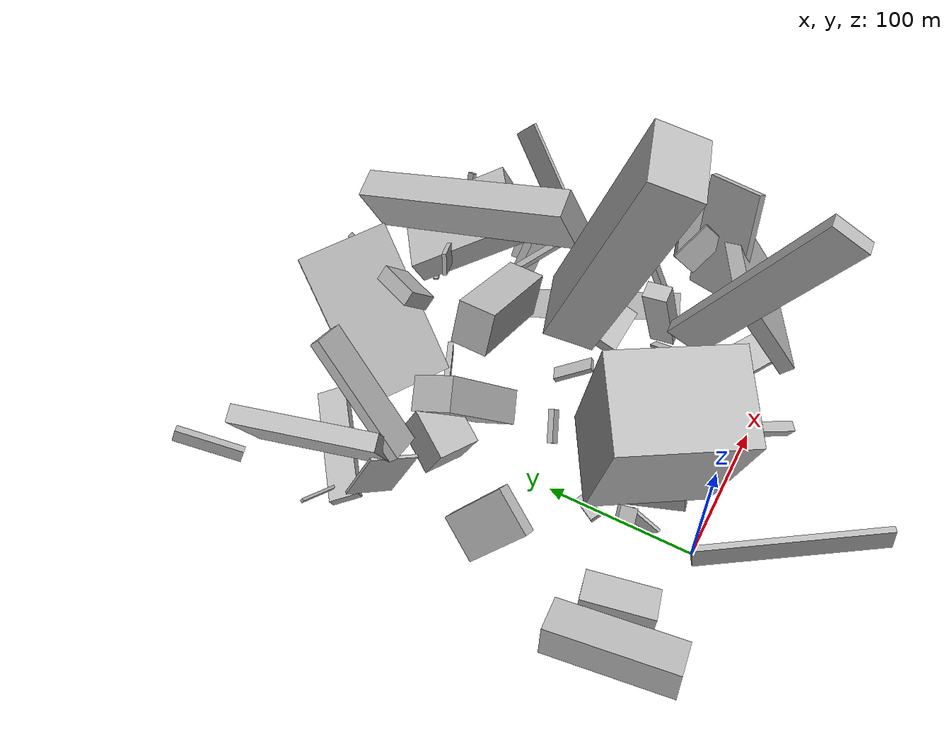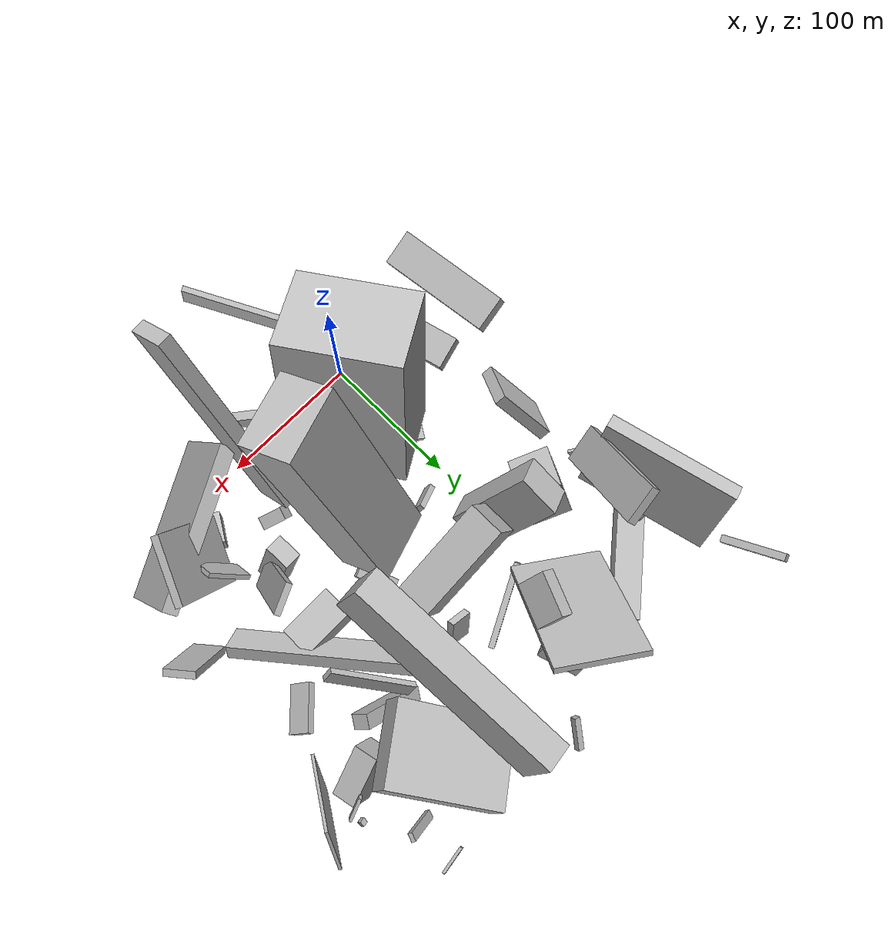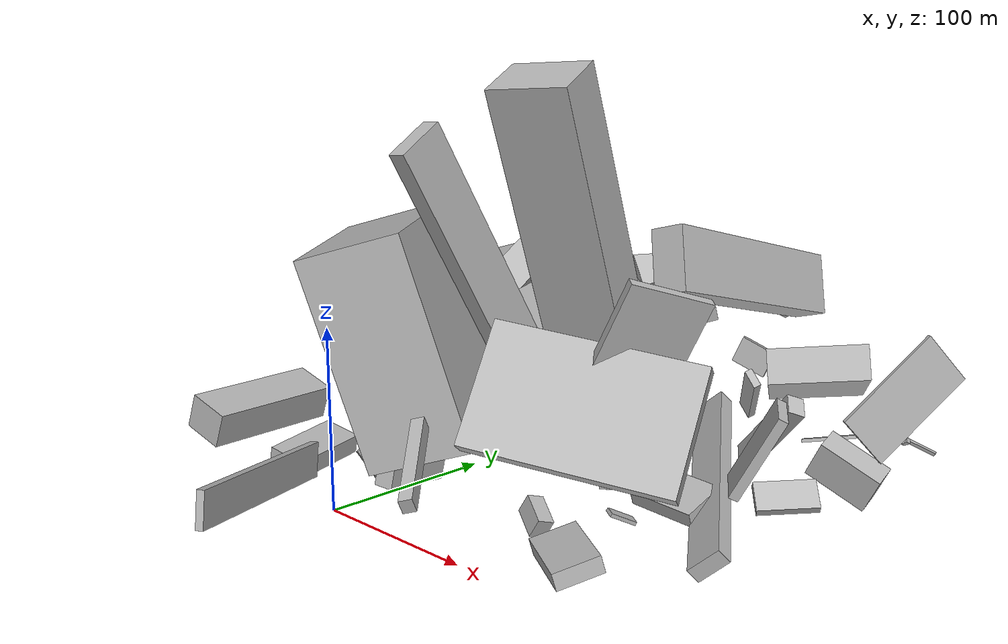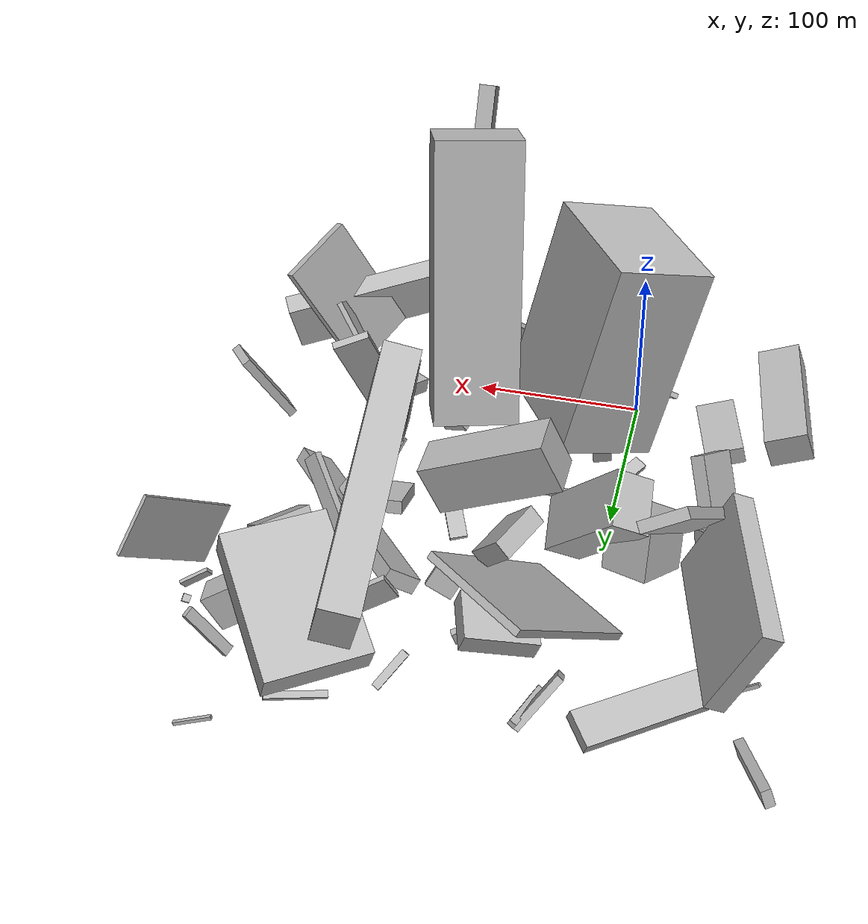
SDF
<sdf version="1.6">
 <world name="default">
  <model name="building_1">
   <static>0</static>
   <pose>159.1138077239486 13.436275596271237 57.94684103337113 0.5857820949794299 -0.13775131169422156 -2.6791968526474874</pose>
   <link name="link">
    <gravity>0</gravity>
    <pose>0 0 31.5 0 0 0</pose>
    <collision name="collision"><geometry><box><size>105 10 63</size></box></geometry></collision>
    <visual name="visual">
     <cast_shadows>0</cast_shadows>
     <geometry><box><size>105 10 63</size></box></geometry>
     <material>
      <script>
       <uri>model://HANNAS_wall/materials/scripts</uri>
       <uri>model://HANNAS_wall/materials/textures</uri>
       <name>vrc/HANNAS_wall</name>
      </script>
     </material>
    </visual>
   </link>
  </model>
  <model name="building_8">
   <static>0</static>
   <pose>0.8456267458583824 205.04773165463388 46.59745783080915 0.8320553202530045 0.07223264959962855 2.5471351509358193</pose>
   <link name="link">
    <gravity>0</gravity>
    <pose>0 0 51.0 0 0 0</pose>
    <collision name="collision"><geometry><box><size>59 4 102</size></box></geometry></collision>
    <visual name="visual">
     <cast_shadows>0</cast_shadows>
     <geometry><box><size>59 4 102</size></box></geometry>
     <material>
      <script>
       <uri>model://HANNAS_wall/materials/scripts</uri>
       <uri>model://HANNAS_wall/materials/textures</uri>
       <name>vrc/HANNAS_wall</name>
      </script>
     </material>
    </visual>
   </link>
  </model>
  <model name="building_10">
   <static>0</static>
   <pose>147.91755249715447 54.46704667792444 71.37544862686053 0.31906890251553727 -0.3345849477050274 2.5776239497814135</pose>
   <link name="link">
    <gravity>0</gravity>
    <pose>0 0 37.0 0 0 0</pose>
    <collision name="collision"><geometry><box><size>5 43 74</size></box></geometry></collision>
    <visual name="visual">
     <cast_shadows>0</cast_shadows>
     <geometry><box><size>5 43 74</size></box></geometry>
     <material>
      <script>
       <uri>model://HANNAS_wall/materials/scripts</uri>
       <uri>model://HANNAS_wall/materials/textures</uri>
       <name>vrc/HANNAS_wall</name>
      </script>
     </material>
    </visual>
   </link>
  </model>
  <model name="building_11">
   <static>0</static>
   <pose>-55.88397061824636 111.2717917238354 40.22627905249582 0.7936065777207628 -0.8385531652404434 -1.1349127744845997</pose>
   <link name="link">
    <gravity>0</gravity>
    <pose>0 0 4.0 0 0 0</pose>
    <collision name="collision"><geometry><box><size>51 31 8</size></box></geometry></collision>
    <visual name="visual">
     <cast_shadows>0</cast_shadows>
     <geometry><box><size>51 31 8</size></box></geometry>
     <material>
      <script>
       <uri>model://HANNAS_wall/materials/scripts</uri>
       <uri>model://HANNAS_wall/materials/textures</uri>
       <name>vrc/HANNAS_wall</name>
      </script>
     </material>
    </visual>
   </link>
  </model>
  <model name="building_14">
   <static>0</static>
   <pose>95.51483392943211 201.38969245307635 34.242334045749026 1.92727393208681 0.8194639101243145 0.9276658580605425</pose>
   <link name="link">
    <gravity>0</gravity>
    <pose>0 0 75.0 0 0 0</pose>
    <collision name="collision"><geometry><box><size>9 20 150</size></box></geometry></collision>
    <visual name="visual">
     <cast_shadows>0</cast_shadows>
     <geometry><box><size>9 20 150</size></box></geometry>
     <material>
      <script>
       <uri>model://HANNAS_wall/materials/scripts</uri>
       <uri>model://HANNAS_wall/materials/textures</uri>
       <name>vrc/HANNAS_wall</name>
      </script>
     </material>
    </visual>
   </link>
  </model>
  <model name="building_15">
   <static>0</static>
   <pose>74.59313998689322 123.98580256936594 88.67878758578753 -0.06287728880933119 -0.34629753177759953 1.9146610443210994</pose>
   <link name="link">
    <gravity>0</gravity>
    <pose>0 0 75.0 0 0 0</pose>
    <collision name="collision"><geometry><box><size>33 45 150</size></box></geometry></collision>
    <visual name="visual">
     <cast_shadows>0</cast_shadows>
     <geometry><box><size>33 45 150</size></box></geometry>
     <material>
      <script>
       <uri>model://HANNAS_wall/materials/scripts</uri>
       <uri>model://HANNAS_wall/materials/textures</uri>
       <name>vrc/HANNAS_wall</name>
      </script>
     </material>
    </visual>
   </link>
  </model>
  <model name="building_21">
   <static>0</static>
   <pose>-62.54899721045746 220.35935203479772 54.889465916284614 0.017928087220613988 0.401777272994292 -2.8875137946002227</pose>
   <link name="link">
    <gravity>0</gravity>
    <pose>0 0 27.5 0 0 0</pose>
    <collision name="collision"><geometry><box><size>11 89 55</size></box></geometry></collision>
    <visual name="visual">
     <cast_shadows>0</cast_shadows>
     <geometry><box><size>11 89 55</size></box></geometry>
     <material>
      <script>
       <uri>model://HANNAS_wall/materials/scripts</uri>
       <uri>model://HANNAS_wall/materials/textures</uri>
       <name>vrc/HANNAS_wall</name>
      </script>
     </material>
    </visual>
   </link>
  </model>
  <model name="building_23">
   <static>0</static>
   <pose>-33.32842596712758 151.8489042872372 49.78965106882918 1.1751729924314984 -0.20513603152566345 2.6920419037199546</pose>
   <link name="link">
    <gravity>0</gravity>
    <pose>0 0 16.0 0 0 0</pose>
    <collision name="collision"><geometry><box><size>27 31 32</size></box></geometry></collision>
    <visual name="visual">
     <cast_shadows>0</cast_shadows>
     <geometry><box><size>27 31 32</size></box></geometry>
     <material>
      <script>
       <uri>model://HANNAS_wall/materials/scripts</uri>
       <uri>model://HANNAS_wall/materials/textures</uri>
       <name>vrc/HANNAS_wall</name>
      </script>
     </material>
    </visual>
   </link>
  </model>
  <model name="building_38">
   <static>0</static>
   <pose>110.1063743259683 210.01617964693372 95.46091207373397 0.27089373075676376 -0.25752482190596915 -1.50701820132834</pose>
   <link name="link">
    <gravity>0</gravity>
    <pose>0 0 18.0 0 0 0</pose>
    <collision name="collision"><geometry><box><size>150 20 36</size></box></geometry></collision>
    <visual name="visual">
     <cast_shadows>0</cast_shadows>
     <geometry><box><size>150 20 36</size></box></geometry>
     <material>
      <script>
       <uri>model://HANNAS_wall/materials/scripts</uri>
       <uri>model://HANNAS_wall/materials/textures</uri>
       <name>vrc/HANNAS_wall</name>
      </script>
     </material>
    </visual>
   </link>
  </model>
  <model name="building_39">
   <static>0</static>
   <pose>-14.246740028703497 -1.7595349841744223 25.642129952614056 1.4309719046076137 0.02585714252078992 0.5200638740085819</pose>
   <link name="link">
    <gravity>0</gravity>
    <pose>0 0 59.5 0 0 0</pose>
    <collision name="collision"><geometry><box><size>4 19 119</size></box></geometry></collision>
    <visual name="visual">
     <cast_shadows>0</cast_shadows>
     <geometry><box><size>4 19 119</size></box></geometry>
     <material>
      <script>
       <uri>model://HANNAS_wall/materials/scripts</uri>
       <uri>model://HANNAS_wall/materials/textures</uri>
       <name>vrc/HANNAS_wall</name>
      </script>
     </material>
    </visual>
   </link>
  </model>
  <model name="building_40">
   <static>0</static>
   <pose>-5.2343420615912635 72.44874677730962 94.18746307907183 -1.7490813672014913 -1.277176754975238 -2.38886350394899</pose>
   <link name="link">
    <gravity>0</gravity>
    <pose>0 0 39.5 0 0 0</pose>
    <collision name="collision"><geometry><box><size>118 58 79</size></box></geometry></collision>
    <visual name="visual">
     <cast_shadows>0</cast_shadows>
     <geometry><box><size>118 58 79</size></box></geometry>
     <material>
      <script>
       <uri>model://HANNAS_wall/materials/scripts</uri>
       <uri>model://HANNAS_wall/materials/textures</uri>
       <name>vrc/HANNAS_wall</name>
      </script>
     </material>
    </visual>
   </link>
  </model>
  <model name="building_41">
   <static>0</static>
   <pose>155.3689195926294 157.6418422677176 72.3585104152755 2.2055301684032913 0.4228930295385421 -2.1631885921597376</pose>
   <link name="link">
    <gravity>0</gravity>
    <pose>0 0 30.5 0 0 0</pose>
    <collision name="collision"><geometry><box><size>4 10 61</size></box></geometry></collision>
    <visual name="visual">
     <cast_shadows>0</cast_shadows>
     <geometry><box><size>4 10 61</size></box></geometry>
     <material>
      <script>
       <uri>model://HANNAS_wall/materials/scripts</uri>
       <uri>model://HANNAS_wall/materials/textures</uri>
       <name>vrc/HANNAS_wall</name>
      </script>
     </material>
    </visual>
   </link>
  </model>
  <model name="building_43">
   <static>0</static>
   <pose>99.24863558841241 55.71885716492735 76.25988078761047 -0.07716494437695395 -0.5117853786590906 1.7074327518989423</pose>
   <link name="link">
    <gravity>0</gravity>
    <pose>0 0 75.0 0 0 0</pose>
    <collision name="collision"><geometry><box><size>26 9 150</size></box></geometry></collision>
    <visual name="visual">
     <cast_shadows>0</cast_shadows>
     <geometry><box><size>26 9 150</size></box></geometry>
     <material>
      <script>
       <uri>model://HANNAS_wall/materials/scripts</uri>
       <uri>model://HANNAS_wall/materials/textures</uri>
       <name>vrc/HANNAS_wall</name>
      </script>
     </material>
    </visual>
   </link>
  </model>
  <model name="building_48">
   <static>0</static>
   <pose>39.130318747306944 201.6770665501179 18.776030131068193 1.6027151602831762 0.2749880032691475 0.4785035606673193</pose>
   <link name="link">
    <gravity>0</gravity>
    <pose>0 0 2.0 0 0 0</pose>
    <collision name="collision"><geometry><box><size>59 8 4</size></box></geometry></collision>
    <visual name="visual">
     <cast_shadows>0</cast_shadows>
     <geometry><box><size>59 8 4</size></box></geometry>
     <material>
      <script>
       <uri>model://HANNAS_wall/materials/scripts</uri>
       <uri>model://HANNAS_wall/materials/textures</uri>
       <name>vrc/HANNAS_wall</name>
      </script>
     </material>
    </visual>
   </link>
  </model>
  <model name="building_60">
   <static>0</static>
   <pose>136.50997856290607 29.76496117374439 16.045714841082177 -1.5903950927033088 -1.3020181948945997 -2.069221431368545</pose>
   <link name="link">
    <gravity>0</gravity>
    <pose>0 0 20.5 0 0 0</pose>
    <collision name="collision"><geometry><box><size>9 24 41</size></box></geometry></collision>
    <visual name="visual">
     <cast_shadows>0</cast_shadows>
     <geometry><box><size>9 24 41</size></box></geometry>
     <material>
      <script>
       <uri>model://HANNAS_wall/materials/scripts</uri>
       <uri>model://HANNAS_wall/materials/textures</uri>
       <name>vrc/HANNAS_wall</name>
      </script>
     </material>
    </visual>
   </link>
  </model>
  <model name="building_64">
   <static>0</static>
   <pose>74.02458167737079 287.9291570671856 73.24218402000206 0.49057019261513607 -0.4791262449545158 -2.184470831997738</pose>
   <link name="link">
    <gravity>0</gravity>
    <pose>0 0 2.0 0 0 0</pose>
    <collision name="collision"><geometry><box><size>21 4 4</size></box></geometry></collision>
    <visual name="visual">
     <cast_shadows>0</cast_shadows>
     <geometry><box><size>21 4 4</size></box></geometry>
     <material>
      <script>
       <uri>model://HANNAS_wall/materials/scripts</uri>
       <uri>model://HANNAS_wall/materials/textures</uri>
       <name>vrc/HANNAS_wall</name>
      </script>
     </material>
    </visual>
   </link>
  </model>
  <model name="building_65">
   <static>0</static>
   <pose>149.81216365987567 101.02048200170125 82.34213266399598 1.2843769817831272 -0.38742513664859834 -1.0593017840155667</pose>
   <link name="link">
    <gravity>0</gravity>
    <pose>0 0 10.0 0 0 0</pose>
    <collision name="collision"><geometry><box><size>4 81 20</size></box></geometry></collision>
    <visual name="visual">
     <cast_shadows>0</cast_shadows>
     <geometry><box><size>4 81 20</size></box></geometry>
     <material>
      <script>
       <uri>model://HANNAS_wall/materials/scripts</uri>
       <uri>model://HANNAS_wall/materials/textures</uri>
       <name>vrc/HANNAS_wall</name>
      </script>
     </material>
    </visual>
   </link>
  </model>
  <model name="building_72">
   <static>0</static>
   <pose>29.969000691003973 111.83026962222709 26.231872469217045 -0.5926963470325117 0.406363705698929 1.7265698815919397</pose>
   <link name="link">
    <gravity>0</gravity>
    <pose>0 0 3.5 0 0 0</pose>
    <collision name="collision"><geometry><box><size>4 22 7</size></box></geometry></collision>
    <visual name="visual">
     <cast_shadows>0</cast_shadows>
     <geometry><box><size>4 22 7</size></box></geometry>
     <material>
      <script>
       <uri>model://HANNAS_wall/materials/scripts</uri>
       <uri>model://HANNAS_wall/materials/textures</uri>
       <name>vrc/HANNAS_wall</name>
      </script>
     </material>
    </visual>
   </link>
  </model>
  <model name="building_76">
   <static>0</static>
   <pose>17.440740557578984 36.93739647670927 10.958492158398693 0.1082173412974126 0.1743827232577553 1.82238035404539</pose>
   <link name="link">
    <gravity>0</gravity>
    <pose>0 0 6.5 0 0 0</pose>
    <collision name="collision"><geometry><box><size>46 11 13</size></box></geometry></collision>
    <visual name="visual">
     <cast_shadows>0</cast_shadows>
     <geometry><box><size>46 11 13</size></box></geometry>
     <material>
      <script>
       <uri>model://HANNAS_wall/materials/scripts</uri>
       <uri>model://HANNAS_wall/materials/textures</uri>
       <name>vrc/HANNAS_wall</name>
      </script>
     </material>
    </visual>
   </link>
  </model>
  <model name="building_80">
   <static>0</static>
   <pose>200.64416712637595 100.40076911220166 63.73101889220348 1.761236645236138 0.4646973054681501 0.7625744734293064</pose>
   <link name="link">
    <gravity>0</gravity>
    <pose>0 0 10.5 0 0 0</pose>
    <collision name="collision"><geometry><box><size>5 47 21</size></box></geometry></collision>
    <visual name="visual">
     <cast_shadows>0</cast_shadows>
     <geometry><box><size>5 47 21</size></box></geometry>
     <material>
      <script>
       <uri>model://HANNAS_wall/materials/scripts</uri>
       <uri>model://HANNAS_wall/materials/textures</uri>
       <name>vrc/HANNAS_wall</name>
      </script>
     </material>
    </visual>
   </link>
  </model>
  <model name="building_82">
   <static>0</static>
   <pose>86.28270330286712 126.73156508701044 13.718459320199479 -2.6543029003325374 -0.05266108303555212 -2.7326035200266166</pose>
   <link name="link">
    <gravity>0</gravity>
    <pose>0 0 2.0 0 0 0</pose>
    <collision name="collision"><geometry><box><size>10 29 4</size></box></geometry></collision>
    <visual name="visual">
     <cast_shadows>0</cast_shadows>
     <geometry><box><size>10 29 4</size></box></geometry>
     <material>
      <script>
       <uri>model://HANNAS_wall/materials/scripts</uri>
       <uri>model://HANNAS_wall/materials/textures</uri>
       <name>vrc/HANNAS_wall</name>
      </script>
     </material>
    </visual>
   </link>
  </model>
  <model name="building_88">
   <static>0</static>
   <pose>74.02712879319677 187.40719494219817 29.891194210743105 -1.1485026055219865 -0.47758147321553773 -0.07082558876759507</pose>
   <link name="link">
    <gravity>0</gravity>
    <pose>0 0 2.5 0 0 0</pose>
    <collision name="collision"><geometry><box><size>16 19 5</size></box></geometry></collision>
    <visual name="visual">
     <cast_shadows>0</cast_shadows>
     <geometry><box><size>16 19 5</size></box></geometry>
     <material>
      <script>
       <uri>model://HANNAS_wall/materials/scripts</uri>
       <uri>model://HANNAS_wall/materials/textures</uri>
       <name>vrc/HANNAS_wall</name>
      </script>
     </material>
    </visual>
   </link>
  </model>
  <model name="building_89">
   <static>0</static>
   <pose>9.570391762079375 254.01672432886105 23.143883656018847 -0.91312683104834 0.7033856679486078 -1.4482992180395065</pose>
   <link name="link">
    <gravity>0</gravity>
    <pose>0 0 2.0 0 0 0</pose>
    <collision name="collision"><geometry><box><size>14 34 4</size></box></geometry></collision>
    <visual name="visual">
     <cast_shadows>0</cast_shadows>
     <geometry><box><size>14 34 4</size></box></geometry>
     <material>
      <script>
       <uri>model://HANNAS_wall/materials/scripts</uri>
       <uri>model://HANNAS_wall/materials/textures</uri>
       <name>vrc/HANNAS_wall</name>
      </script>
     </material>
    </visual>
   </link>
  </model>
  <model name="building_90">
   <static>0</static>
   <pose>187.5624049003038 209.93698805751777 23.630956466309332 -2.6570088056046757 -0.1939682336367444 1.7779496391501863</pose>
   <link name="link">
    <gravity>0</gravity>
    <pose>0 0 11.0 0 0 0</pose>
    <collision name="collision"><geometry><box><size>17 37 22</size></box></geometry></collision>
    <visual name="visual">
     <cast_shadows>0</cast_shadows>
     <geometry><box><size>17 37 22</size></box></geometry>
     <material>
      <script>
       <uri>model://HANNAS_wall/materials/scripts</uri>
       <uri>model://HANNAS_wall/materials/textures</uri>
       <name>vrc/HANNAS_wall</name>
      </script>
     </material>
    </visual>
   </link>
  </model>
  <model name="building_91">
   <static>0</static>
   <pose>50.566517454362064 252.38720608520882 73.54835936217813 -1.8666565423284285 0.12933194364304706 1.8797797809965229</pose>
   <link name="link">
    <gravity>0</gravity>
    <pose>0 0 19.0 0 0 0</pose>
    <collision name="collision"><geometry><box><size>27 11 38</size></box></geometry></collision>
    <visual name="visual">
     <cast_shadows>0</cast_shadows>
     <geometry><box><size>27 11 38</size></box></geometry>
     <material>
      <script>
       <uri>model://HANNAS_wall/materials/scripts</uri>
       <uri>model://HANNAS_wall/materials/textures</uri>
       <name>vrc/HANNAS_wall</name>
      </script>
     </material>
    </visual>
   </link>
  </model>
  <model name="building_102">
   <static>0</static>
   <pose>30.552893271594662 222.11640870121983 98.47246167606409 -0.029722519993837647 0.8167771210123939 -0.41773719838884854</pose>
   <link name="link">
    <gravity>0</gravity>
    <pose>0 0 5.0 0 0 0</pose>
    <collision name="collision"><geometry><box><size>21 29 10</size></box></geometry></collision>
    <visual name="visual">
     <cast_shadows>0</cast_shadows>
     <geometry><box><size>21 29 10</size></box></geometry>
     <material>
      <script>
       <uri>model://HANNAS_wall/materials/scripts</uri>
       <uri>model://HANNAS_wall/materials/textures</uri>
       <name>vrc/HANNAS_wall</name>
      </script>
     </material>
    </visual>
   </link>
  </model>
  <model name="building_105">
   <static>0</static>
   <pose>-70.29775434417392 190.49608712535516 33.95714555498863 0.4291719809812265 -0.1633192740779605 0.7772153757596403</pose>
   <link name="link">
    <gravity>0</gravity>
    <pose>0 0 23.0 0 0 0</pose>
    <collision name="collision"><geometry><box><size>2 30 46</size></box></geometry></collision>
    <visual name="visual">
     <cast_shadows>0</cast_shadows>
     <geometry><box><size>2 30 46</size></box></geometry>
     <material>
      <script>
       <uri>model://HANNAS_wall/materials/scripts</uri>
       <uri>model://HANNAS_wall/materials/textures</uri>
       <name>vrc/HANNAS_wall</name>
      </script>
     </material>
    </visual>
   </link>
  </model>
  <model name="building_107">
   <static>0</static>
   <pose>-88.01784358164706 271.43093020198984 40.82976889064575 -0.5514652944964006 -1.0918199617324358 -0.6087742171336732</pose>
   <link name="link">
    <gravity>0</gravity>
    <pose>0 0 21.5 0 0 0</pose>
    <collision name="collision"><geometry><box><size>9 5 43</size></box></geometry></collision>
    <visual name="visual">
     <cast_shadows>0</cast_shadows>
     <geometry><box><size>9 5 43</size></box></geometry>
     <material>
      <script>
       <uri>model://HANNAS_wall/materials/scripts</uri>
       <uri>model://HANNAS_wall/materials/textures</uri>
       <name>vrc/HANNAS_wall</name>
      </script>
     </material>
    </visual>
   </link>
  </model>
  <model name="building_109">
   <static>0</static>
   <pose>156.05423759919748 78.95990275075366 100.7296975231603 -2.268147272940436 -0.45009740239809 -2.7101574991860913</pose>
   <link name="link">
    <gravity>0</gravity>
    <pose>0 0 8.5 0 0 0</pose>
    <collision name="collision"><geometry><box><size>3 29 17</size></box></geometry></collision>
    <visual name="visual">
     <cast_shadows>0</cast_shadows>
     <geometry><box><size>3 29 17</size></box></geometry>
     <material>
      <script>
       <uri>model://HANNAS_wall/materials/scripts</uri>
       <uri>model://HANNAS_wall/materials/textures</uri>
       <name>vrc/HANNAS_wall</name>
      </script>
     </material>
    </visual>
   </link>
  </model>
  <model name="building_113">
   <static>0</static>
   <pose>119.80440102899865 258.4777780297936 4.724043323899969 -1.3657767329982113 -0.19600121059337325 -1.2033751117268194</pose>
   <link name="link">
    <gravity>0</gravity>
    <pose>0 0 16.5 0 0 0</pose>
    <collision name="collision"><geometry><box><size>4 2 33</size></box></geometry></collision>
    <visual name="visual">
     <cast_shadows>0</cast_shadows>
     <geometry><box><size>4 2 33</size></box></geometry>
     <material>
      <script>
       <uri>model://HANNAS_wall/materials/scripts</uri>
       <uri>model://HANNAS_wall/materials/textures</uri>
       <name>vrc/HANNAS_wall</name>
      </script>
     </material>
    </visual>
   </link>
  </model>
  <model name="building_114">
   <static>0</static>
   <pose>59.19659270159203 165.16837536840458 106.4432731980745 3.109451967350919 -0.4213922808078907 -3.133875041928206</pose>
   <link name="link">
    <gravity>0</gravity>
    <pose>0 0 14.5 0 0 0</pose>
    <collision name="collision"><geometry><box><size>70 24 29</size></box></geometry></collision>
    <visual name="visual">
     <cast_shadows>0</cast_shadows>
     <geometry><box><size>70 24 29</size></box></geometry>
     <material>
      <script>
       <uri>model://HANNAS_wall/materials/scripts</uri>
       <uri>model://HANNAS_wall/materials/textures</uri>
       <name>vrc/HANNAS_wall</name>
      </script>
     </material>
    </visual>
   </link>
  </model>
  <model name="building_119">
   <static>0</static>
   <pose>141.38216611717172 239.66581618817264 45.167335666899575 -0.39775501628897814 -0.0864841746450626 0.6418341984366717</pose>
   <link name="link">
    <gravity>0</gravity>
    <pose>0 0 10.0 0 0 0</pose>
    <collision name="collision"><geometry><box><size>56 80 20</size></box></geometry></collision>
    <visual name="visual">
     <cast_shadows>0</cast_shadows>
     <geometry><box><size>56 80 20</size></box></geometry>
     <material>
      <script>
       <uri>model://HANNAS_wall/materials/scripts</uri>
       <uri>model://HANNAS_wall/materials/textures</uri>
       <name>vrc/HANNAS_wall</name>
      </script>
     </material>
    </visual>
   </link>
  </model>
  <model name="building_122">
   <static>0</static>
   <pose>-76.11204411111744 224.26921811311917 15.73241911171781 1.919742302403753 0.6948824495514917 -0.0806037007722764</pose>
   <link name="link">
    <gravity>0</gravity>
    <pose>0 0 1.0 0 0 0</pose>
    <collision name="collision"><geometry><box><size>46 2 2</size></box></geometry></collision>
    <visual name="visual">
     <cast_shadows>0</cast_shadows>
     <geometry><box><size>46 2 2</size></box></geometry>
     <material>
      <script>
       <uri>model://HANNAS_wall/materials/scripts</uri>
       <uri>model://HANNAS_wall/materials/textures</uri>
       <name>vrc/HANNAS_wall</name>
      </script>
     </material>
    </visual>
   </link>
  </model>
  <model name="building_123">
   <static>0</static>
   <pose>192.82168220112908 222.43306447350756 41.7001417780388 -2.7084369496368166 1.0354870772571019 -2.3105207596886403</pose>
   <link name="link">
    <gravity>0</gravity>
    <pose>0 0 8.5 0 0 0</pose>
    <collision name="collision"><geometry><box><size>5 2 17</size></box></geometry></collision>
    <visual name="visual">
     <cast_shadows>0</cast_shadows>
     <geometry><box><size>5 2 17</size></box></geometry>
     <material>
      <script>
       <uri>model://HANNAS_wall/materials/scripts</uri>
       <uri>model://HANNAS_wall/materials/textures</uri>
       <name>vrc/HANNAS_wall</name>
      </script>
     </material>
    </visual>
   </link>
  </model>
  <model name="building_124">
   <static>0</static>
   <pose>18.262562399465544 149.0394620495764 39.53098936389043 0.5500572608130819 0.5145391659694086 -2.7682685617026817</pose>
   <link name="link">
    <gravity>0</gravity>
    <pose>0 0 32.5 0 0 0</pose>
    <collision name="collision"><geometry><box><size>22 30 65</size></box></geometry></collision>
    <visual name="visual">
     <cast_shadows>0</cast_shadows>
     <geometry><box><size>22 30 65</size></box></geometry>
     <material>
      <script>
       <uri>model://HANNAS_wall/materials/scripts</uri>
       <uri>model://HANNAS_wall/materials/textures</uri>
       <name>vrc/HANNAS_wall</name>
      </script>
     </material>
    </visual>
   </link>
  </model>
  <model name="building_125">
   <static>0</static>
   <pose>144.76065887564476 197.52155302115995 29.343953749855736 1.03523551801513 -0.8182112616976319 -0.17238888059443663</pose>
   <link name="link">
    <gravity>0</gravity>
    <pose>0 0 5.0 0 0 0</pose>
    <collision name="collision"><geometry><box><size>55 12 10</size></box></geometry></collision>
    <visual name="visual">
     <cast_shadows>0</cast_shadows>
     <geometry><box><size>55 12 10</size></box></geometry>
     <material>
      <script>
       <uri>model://HANNAS_wall/materials/scripts</uri>
       <uri>model://HANNAS_wall/materials/textures</uri>
       <name>vrc/HANNAS_wall</name>
      </script>
     </material>
    </visual>
   </link>
  </model>
  <model name="building_129">
   <static>0</static>
   <pose>99.64930429068494 234.55226574974535 58.51166874643939 -1.468062394326968 1.1528407410627628 -2.6635019208187227</pose>
   <link name="link">
    <gravity>0</gravity>
    <pose>0 0 1.5 0 0 0</pose>
    <collision name="collision"><geometry><box><size>16 21 3</size></box></geometry></collision>
    <visual name="visual">
     <cast_shadows>0</cast_shadows>
     <geometry><box><size>16 21 3</size></box></geometry>
     <material>
      <script>
       <uri>model://HANNAS_wall/materials/scripts</uri>
       <uri>model://HANNAS_wall/materials/textures</uri>
       <name>vrc/HANNAS_wall</name>
      </script>
     </material>
    </visual>
   </link>
  </model>
  <model name="building_141">
   <static>0</static>
   <pose>74.06600772113903 -2.8635643794584382 42.78223414975423 -0.3871017066126758 0.22962940653903408 -2.4637011726980704</pose>
   <link name="link">
    <gravity>0</gravity>
    <pose>0 0 4.0 0 0 0</pose>
    <collision name="collision"><geometry><box><size>7 60 8</size></box></geometry></collision>
    <visual name="visual">
     <cast_shadows>0</cast_shadows>
     <geometry><box><size>7 60 8</size></box></geometry>
     <material>
      <script>
       <uri>model://HANNAS_wall/materials/scripts</uri>
       <uri>model://HANNAS_wall/materials/textures</uri>
       <name>vrc/HANNAS_wall</name>
      </script>
     </material>
    </visual>
   </link>
  </model>
  <model name="building_143">
   <static>0</static>
   <pose>-1.6446989945058208 77.02518410952128 12.380810744088034 -1.529030485848298 0.2666649139863585 2.5956377665709325</pose>
   <link name="link">
    <gravity>0</gravity>
    <pose>0 0 9.0 0 0 0</pose>
    <collision name="collision"><geometry><box><size>8 4 18</size></box></geometry></collision>
    <visual name="visual">
     <cast_shadows>0</cast_shadows>
     <geometry><box><size>8 4 18</size></box></geometry>
     <material>
      <script>
       <uri>model://HANNAS_wall/materials/scripts</uri>
       <uri>model://HANNAS_wall/materials/textures</uri>
       <name>vrc/HANNAS_wall</name>
      </script>
     </material>
    </visual>
   </link>
  </model>
  <model name="building_147">
   <static>0</static>
   <pose>-49.42987949589588 3.2264163708164233 12.643024851768633 1.3226472070939692 1.3328506367396804 3.1261948083283713</pose>
   <link name="link">
    <gravity>0</gravity>
    <pose>0 0 23.5 0 0 0</pose>
    <collision name="collision"><geometry><box><size>11 23 47</size></box></geometry></collision>
    <visual name="visual">
     <cast_shadows>0</cast_shadows>
     <geometry><box><size>11 23 47</size></box></geometry>
     <material>
      <script>
       <uri>model://HANNAS_wall/materials/scripts</uri>
       <uri>model://HANNAS_wall/materials/textures</uri>
       <name>vrc/HANNAS_wall</name>
      </script>
     </material>
    </visual>
   </link>
  </model>
  <model name="building_149">
   <static>0</static>
   <pose>186.67860345044403 149.34464170593657 9.203197228930703 -0.8922509506074872 -0.049624276937482004 0.7892547404301745</pose>
   <link name="link">
    <gravity>0</gravity>
    <pose>0 0 8.5 0 0 0</pose>
    <collision name="collision"><geometry><box><size>33 5 17</size></box></geometry></collision>
    <visual name="visual">
     <cast_shadows>0</cast_shadows>
     <geometry><box><size>33 5 17</size></box></geometry>
     <material>
      <script>
       <uri>model://HANNAS_wall/materials/scripts</uri>
       <uri>model://HANNAS_wall/materials/textures</uri>
       <name>vrc/HANNAS_wall</name>
      </script>
     </material>
    </visual>
   </link>
  </model>
  <model name="building_152">
   <static>0</static>
   <pose>136.6183285530779 86.40964065652784 8.000514321610828 1.0867661241605875 0.17890787674600692 -0.4369216075596222</pose>
   <link name="link">
    <gravity>0</gravity>
    <pose>0 0 8.0 0 0 0</pose>
    <collision name="collision"><geometry><box><size>6 2 16</size></box></geometry></collision>
    <visual name="visual">
     <cast_shadows>0</cast_shadows>
     <geometry><box><size>6 2 16</size></box></geometry>
     <material>
      <script>
       <uri>model://HANNAS_wall/materials/scripts</uri>
       <uri>model://HANNAS_wall/materials/textures</uri>
       <name>vrc/HANNAS_wall</name>
      </script>
     </material>
    </visual>
   </link>
  </model>
  <model name="building_159">
   <static>0</static>
   <pose>200.76665908603414 193.51099772725564 39.025450057141335 0.0029726174521645435 -0.8395337526580868 -2.070330284461258</pose>
   <link name="link">
    <gravity>0</gravity>
    <pose>0 0 32.0 0 0 0</pose>
    <collision name="collision"><geometry><box><size>34 2 64</size></box></geometry></collision>
    <visual name="visual">
     <cast_shadows>0</cast_shadows>
     <geometry><box><size>34 2 64</size></box></geometry>
     <material>
      <script>
       <uri>model://HANNAS_wall/materials/scripts</uri>
       <uri>model://HANNAS_wall/materials/textures</uri>
       <name>vrc/HANNAS_wall</name>
      </script>
     </material>
    </visual>
   </link>
  </model>
  <model name="building_166">
   <static>0</static>
   <pose>155.3664893102802 120.83708643530599 11.059956710181648 1.4219079794092508 -1.2298988160001914 -1.4249655770113299</pose>
   <link name="link">
    <gravity>0</gravity>
    <pose>0 0 20.0 0 0 0</pose>
    <collision name="collision"><geometry><box><size>8 26 40</size></box></geometry></collision>
    <visual name="visual">
     <cast_shadows>0</cast_shadows>
     <geometry><box><size>8 26 40</size></box></geometry>
     <material>
      <script>
       <uri>model://HANNAS_wall/materials/scripts</uri>
       <uri>model://HANNAS_wall/materials/textures</uri>
       <name>vrc/HANNAS_wall</name>
      </script>
     </material>
    </visual>
   </link>
  </model>
  <model name="building_167">
   <static>0</static>
   <pose>204.6937892516634 234.12216694474603 31.34593620885725 -2.2726860109257205 -0.875421072621022 2.3223817152653856</pose>
   <link name="link">
    <gravity>0</gravity>
    <pose>0 0 2.0 0 0 0</pose>
    <collision name="collision"><geometry><box><size>3 4 4</size></box></geometry></collision>
    <visual name="visual">
     <cast_shadows>0</cast_shadows>
     <geometry><box><size>3 4 4</size></box></geometry>
     <material>
      <script>
       <uri>model://HANNAS_wall/materials/scripts</uri>
       <uri>model://HANNAS_wall/materials/textures</uri>
       <name>vrc/HANNAS_wall</name>
      </script>
     </material>
    </visual>
   </link>
  </model>
  <model name="building_172">
   <static>0</static>
   <pose>17.916941945579925 254.49308762296675 17.653878046433185 0.3074819983830443 -0.4501053776142087 -0.39205868240293346</pose>
   <link name="link">
    <gravity>0</gravity>
    <pose>0 0 1.5 0 0 0</pose>
    <collision name="collision"><geometry><box><size>4 33 3</size></box></geometry></collision>
    <visual name="visual">
     <cast_shadows>0</cast_shadows>
     <geometry><box><size>4 33 3</size></box></geometry>
     <material>
      <script>
       <uri>model://HANNAS_wall/materials/scripts</uri>
       <uri>model://HANNAS_wall/materials/textures</uri>
       <name>vrc/HANNAS_wall</name>
      </script>
     </material>
    </visual>
   </link>
  </model>
  <model name="building_178">
   <static>0</static>
   <pose>104.65708096916254 43.12237959653472 14.37237017810833 1.884952571861514 -0.44995899829781494 2.7100274164997504</pose>
   <link name="link">
    <gravity>0</gravity>
    <pose>0 0 4.5 0 0 0</pose>
    <collision name="collision"><geometry><box><size>18 11 9</size></box></geometry></collision>
    <visual name="visual">
     <cast_shadows>0</cast_shadows>
     <geometry><box><size>18 11 9</size></box></geometry>
     <material>
      <script>
       <uri>model://HANNAS_wall/materials/scripts</uri>
       <uri>model://HANNAS_wall/materials/textures</uri>
       <name>vrc/HANNAS_wall</name>
      </script>
     </material>
    </visual>
   </link>
  </model>
  <model name="building_179">
   <static>0</static>
   <pose>127.55195357396224 90.45807781831569 53.04421267908141 1.4304110788774735 -0.19943354600117166 0.06606534052340414</pose>
   <link name="link">
    <gravity>0</gravity>
    <pose>0 0 8.5 0 0 0</pose>
    <collision name="collision"><geometry><box><size>12 55 17</size></box></geometry></collision>
    <visual name="visual">
     <cast_shadows>0</cast_shadows>
     <geometry><box><size>12 55 17</size></box></geometry>
     <material>
      <script>
       <uri>model://HANNAS_wall/materials/scripts</uri>
       <uri>model://HANNAS_wall/materials/textures</uri>
       <name>vrc/HANNAS_wall</name>
      </script>
     </material>
    </visual>
   </link>
  </model>
  <model name="building_182">
   <static>0</static>
   <pose>-25.032631751970392 39.44717931168804 49.5229219388534 -0.9073612218733721 -0.7478472487747662 -1.8459598677324363</pose>
   <link name="link">
    <gravity>0</gravity>
    <pose>0 0 5.0 0 0 0</pose>
    <collision name="collision"><geometry><box><size>3 13 10</size></box></geometry></collision>
    <visual name="visual">
     <cast_shadows>0</cast_shadows>
     <geometry><box><size>3 13 10</size></box></geometry>
     <material>
      <script>
       <uri>model://HANNAS_wall/materials/scripts</uri>
       <uri>model://HANNAS_wall/materials/textures</uri>
       <name>vrc/HANNAS_wall</name>
      </script>
     </material>
    </visual>
   </link>
  </model>
  <model name="building_190">
   <static>0</static>
   <pose>-58.167740126733214 168.14276388884434 81.28423814095748 -0.612145662312965 -0.6403108677251912 -1.0292228259092684</pose>
   <link name="link">
    <gravity>0</gravity>
    <pose>0 0 40.0 0 0 0</pose>
    <collision name="collision"><geometry><box><size>6 25 80</size></box></geometry></collision>
    <visual name="visual">
     <cast_shadows>0</cast_shadows>
     <geometry><box><size>6 25 80</size></box></geometry>
     <material>
      <script>
       <uri>model://HANNAS_wall/materials/scripts</uri>
       <uri>model://HANNAS_wall/materials/textures</uri>
       <name>vrc/HANNAS_wall</name>
      </script>
     </material>
    </visual>
   </link>
  </model>
  <model name="building_198">
   <static>0</static>
   <pose>-78.54258641990668 16.197763126810173 30.78549684822265 0.0916561715729483 1.239388240775612 -2.920280689613559</pose>
   <link name="link">
    <gravity>0</gravity>
    <pose>0 0 12.5 0 0 0</pose>
    <collision name="collision"><geometry><box><size>20 80 25</size></box></geometry></collision>
    <visual name="visual">
     <cast_shadows>0</cast_shadows>
     <geometry><box><size>20 80 25</size></box></geometry>
     <material>
      <script>
       <uri>model://HANNAS_wall/materials/scripts</uri>
       <uri>model://HANNAS_wall/materials/textures</uri>
       <name>vrc/HANNAS_wall</name>
      </script>
     </material>
    </visual>
   </link>
  </model>
  <model name="building_202">
   <static>0</static>
   <pose>-2.774255574382393 40.0038144089772 14.660613810003195 0.5193591863001342 -0.18257577569807695 -0.1483366172848347</pose>
   <link name="link">
    <gravity>0</gravity>
    <pose>0 0 9.5 0 0 0</pose>
    <collision name="collision"><geometry><box><size>2 22 19</size></box></geometry></collision>
    <visual name="visual">
     <cast_shadows>0</cast_shadows>
     <geometry><box><size>2 22 19</size></box></geometry>
     <material>
      <script>
       <uri>model://HANNAS_wall/materials/scripts</uri>
       <uri>model://HANNAS_wall/materials/textures</uri>
       <name>vrc/HANNAS_wall</name>
      </script>
     </material>
    </visual>
   </link>
  </model>
  <model name="building_204">
   <static>0</static>
   <pose>-34.70170047247056 229.14446170057766 14.099617648364045 -2.7262342848286187 1.2672099409445463 -0.4903039794529042</pose>
   <link name="link">
    <gravity>0</gravity>
    <pose>0 0 10.0 0 0 0</pose>
    <collision name="collision"><geometry><box><size>7 80 20</size></box></geometry></collision>
    <visual name="visual">
     <cast_shadows>0</cast_shadows>
     <geometry><box><size>7 80 20</size></box></geometry>
     <material>
      <script>
       <uri>model://HANNAS_wall/materials/scripts</uri>
       <uri>model://HANNAS_wall/materials/textures</uri>
       <name>vrc/HANNAS_wall</name>
      </script>
     </material>
    </visual>
   </link>
  </model>
  <model name="building_208">
   <static>0</static>
   <pose>189.8916863604848 292.4551370623574 4.8962246685993005 -0.583606060386391 1.2183057218275635 2.7000575293942033</pose>
   <link name="link">
    <gravity>0</gravity>
    <pose>0 0 10.5 0 0 0</pose>
    <collision name="collision"><geometry><box><size>2 2 21</size></box></geometry></collision>
    <visual name="visual">
     <cast_shadows>0</cast_shadows>
     <geometry><box><size>2 2 21</size></box></geometry>
     <material>
      <script>
       <uri>model://HANNAS_wall/materials/scripts</uri>
       <uri>model://HANNAS_wall/materials/textures</uri>
       <name>vrc/HANNAS_wall</name>
      </script>
     </material>
    </visual>
   </link>
  </model>
  <model name="building_216">
   <static>0</static>
   <pose>170.1620164288597 259.9629658779661 27.635028422110413 0.2956022596485001 -0.45292836702658623 2.6597101552017013</pose>
   <link name="link">
    <gravity>0</gravity>
    <pose>0 0 16.5 0 0 0</pose>
    <collision name="collision"><geometry><box><size>3 6 33</size></box></geometry></collision>
    <visual name="visual">
     <cast_shadows>0</cast_shadows>
     <geometry><box><size>3 6 33</size></box></geometry>
     <material>
      <script>
       <uri>model://HANNAS_wall/materials/scripts</uri>
       <uri>model://HANNAS_wall/materials/textures</uri>
       <name>vrc/HANNAS_wall</name>
      </script>
     </material>
    </visual>
   </link>
  </model>
 </world>
</sdf>
